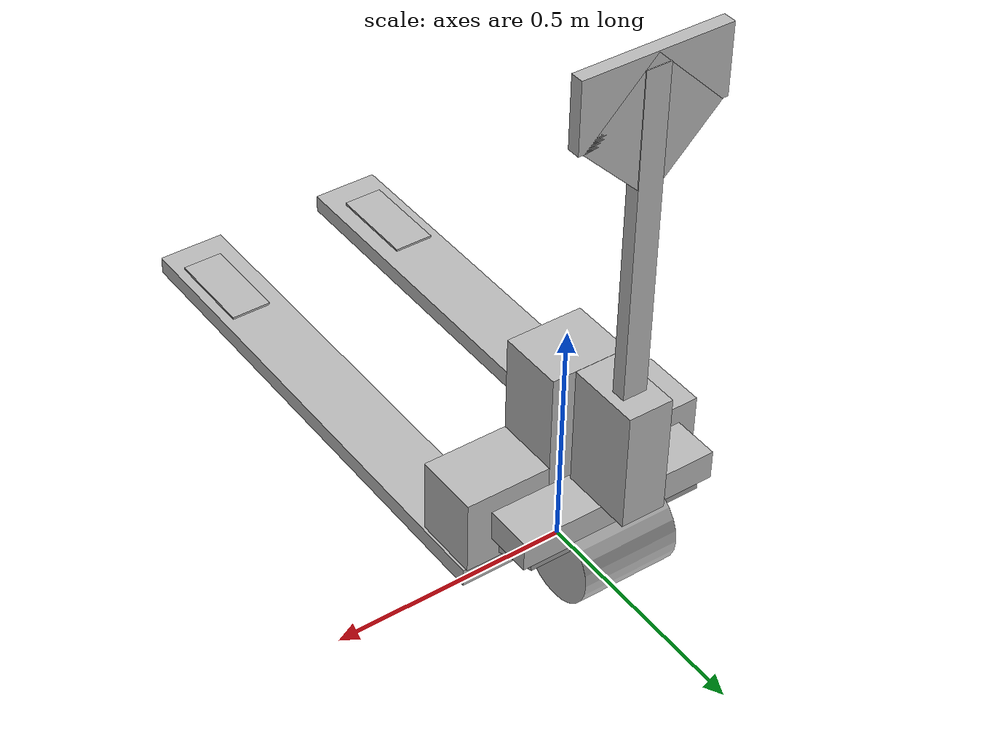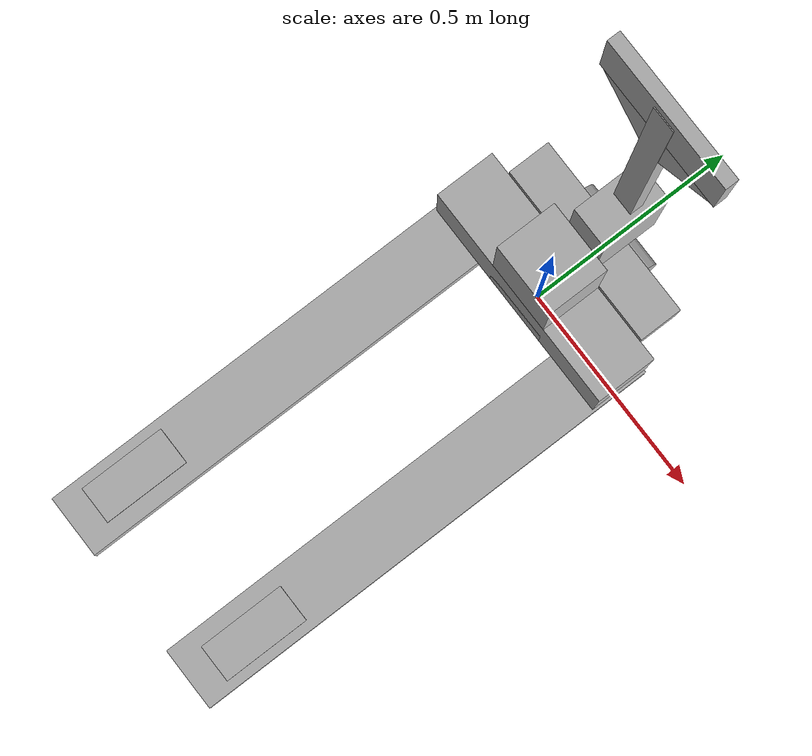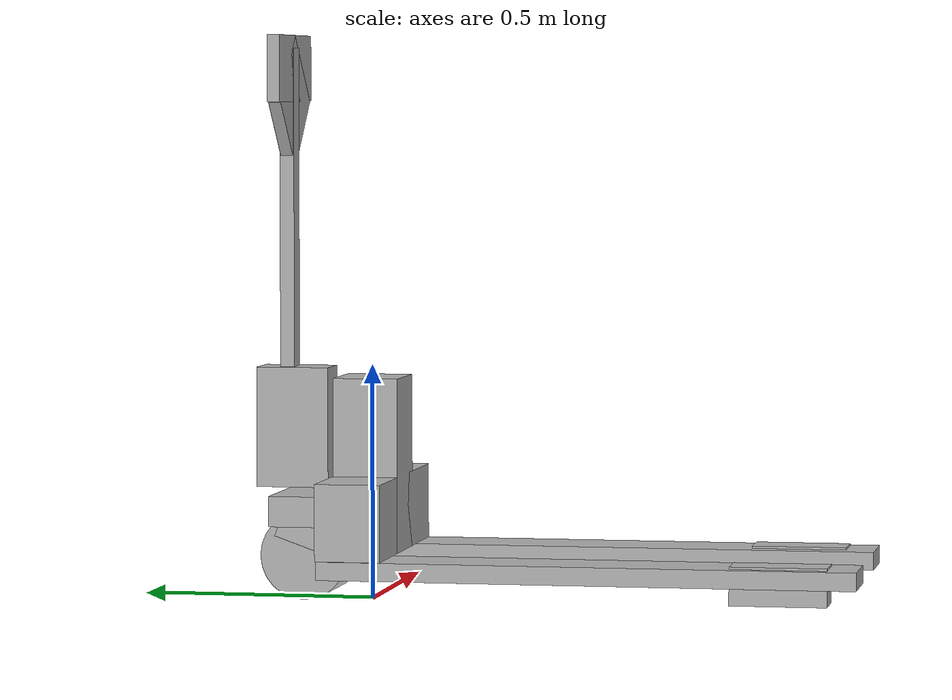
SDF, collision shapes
<?xml version="1.0" ?>
<sdf version="1.6">
  <model name="Pallet_Jack">
    <link name="base_link">
      <visual name="base_visual">
        <geometry>
          <mesh>
            <uri>base_visual.glb</uri>
          </mesh>
        </geometry>
      </visual>
      <collision name="forks_lp_collider_box">
        <pose>0.1955 -0.497351 0.085865 0.0 -0.0 0.0</pose>
        <geometry>
          <box>
            <size>0.14611 1.126207 0.038377</size>
          </box>
        </geometry>
      </collision>
      <collision name="forks_lp001_collider_box">
        <pose>-0.1955 -0.497351 0.085865 0.0 -0.0 0.0</pose>
        <geometry>
          <box>
            <size>0.14611 1.126207 0.038377</size>
          </box>
        </geometry>
      </collision>
      <collision name="frontwheelbrackets_lp011_collider_box">
        <pose>0.202997 -0.897836 0.069697 0.0 -0.0 0.0</pose>
        <geometry>
          <box>
            <size>0.087998 0.202116 0.080232</size>
          </box>
        </geometry>
      </collision>
      <collision name="frontwheelbrackets_lp011_collider_box.001">
        <pose>-0.202997 -0.897836 0.069697 0.0 -0.0 0.0</pose>
        <geometry>
          <box>
            <size>0.087998 0.202116 0.080232</size>
          </box>
        </geometry>
      </collision>
      <collision name="wheels_lp001_collider_cylinder">
        <pose>0.0 0.128327 0.099368 -0.0 1.570796 0.0</pose>
        <geometry>
          <cylinder>
            <radius>0.0936</radius>
            <length>0.210597</length>
          </cylinder>
        </geometry>
      </collision>
      <collision name="handle_lp029_collider_box">
        <pose>0.0 0.128227 0.203252 0.0 -0.0 0.0</pose>
        <geometry>
          <box>
            <size>0.432001 0.1 0.063947</size>
          </box>
        </geometry>
      </collision>
      <collision name="forks_lp005_collider_box">
        <pose>0.0 0.060844 0.153626 -0.33895 0.0 -3.141593</pose>
        <geometry>
          <box>
            <size>0.385004 0.205222 0.079693</size>
          </box>
        </geometry>
      </collision>
      <collision name="handle_lp030_collider_box">
        <pose>0.0 0.165727 0.367329 -1e-06 -3.141593 -0.0</pose>
        <geometry>
          <box>
            <size>0.094032 0.155 0.256</size>
          </box>
        </geometry>
      </collision>
      <collision name="arm_lp002_collider_box">
        <pose>0.0 0.181226 0.805285 1.570796 -0.0 3.141593</pose>
        <geometry>
          <box>
            <size>0.051228 0.7401 0.030235</size>
          </box>
        </geometry>
      </collision>
      <collision name="handle_lp028_collider_box">
        <pose>0.0 0.181226 1.131579 0.0 -0.0 0.0</pose>
        <geometry>
          <box>
            <size>0.30117 0.026384 0.140879</size>
          </box>
        </geometry>
      </collision>
      <collision name="handle_lp028_collider_box.001">
        <pose>0.0 0.181226 1.059867 0.0 0.785398 0.0</pose>
        <geometry>
          <box>
            <size>0.197806 0.026384 0.197806</size>
          </box>
        </geometry>
      </collision>
      <collision name="tri_lp001_collider_box">
        <pose>0.0 0.000146 0.290039 0.0 -0.0 0.0</pose>
        <geometry>
          <box>
            <size>0.163575 0.13885 0.370686</size>
          </box>
        </geometry>
      </collision>
      <collision name="tri_lp001_collider_box.001">
        <pose>0.0 0.000146 0.185588 0.0 -0.0 0.0</pose>
        <geometry>
          <box>
            <size>0.525836 0.13885 0.161784</size>
          </box>
        </geometry>
      </collision>
    </link>
  </model>
</sdf>
